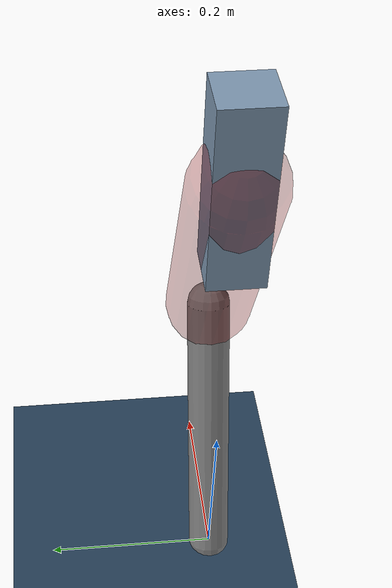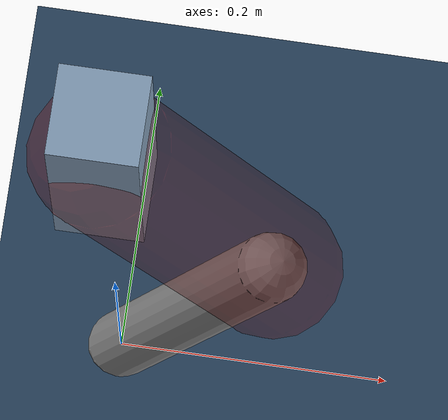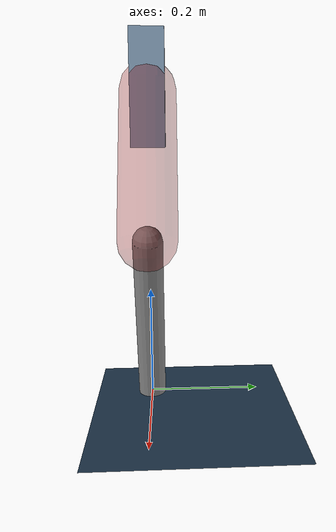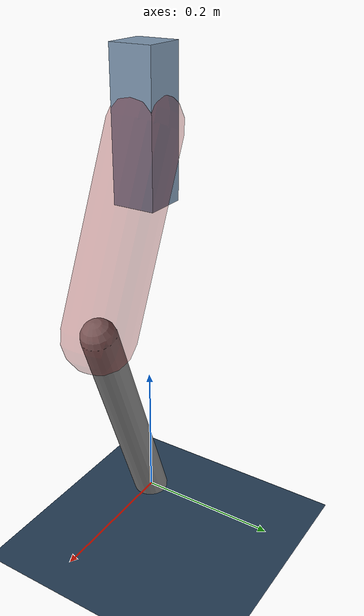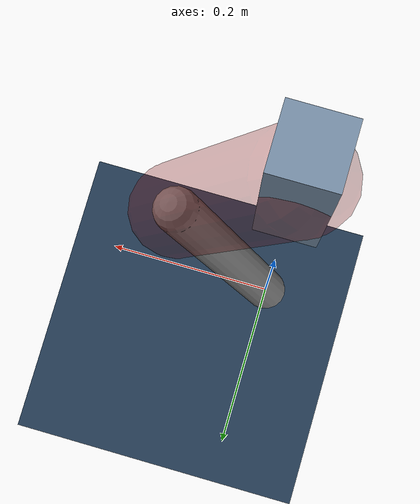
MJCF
<mujoco model="Hopper2D">
	<compiler inertiafromgeom="true" angle="radian" />
	<option timestep="0.001" integrator="implicit" cone="elliptic" solver="Newton" tolerance="1e-10" />

	<default>
		<geom contype="1" conaffinity="1" condim="3" friction="2 0.005 0.0001" solref="0.005 1" />
		<joint limited="true" damping="0.1" />
	</default>

	<asset>
		<texture name="skybox" type="skybox" builtin="gradient" rgb1=".4 .6 .8" rgb2="0 0 0" width="800" height="800" />
		<texture name="grid" type="2d" builtin="checker" rgb1=".1 .2 .3" rgb2=".2 .3 .4" width="300" height="300" mark="edge" markrgb=".2 .3 .4" />
		<material name="ground" texture="grid" texrepeat="1 1" texuniform="true" reflectance="0.1" />
		<material name="leg" rgba="0.5 0.6 0.7 1" />
	</asset>

	<worldbody>

		<geom name="floor" type="plane" size="5 5 0.25" material="ground" />

		<light directional="false" diffuse="0.8 0.8 0.8" specular="0.3 0.3 0.3" pos="0 0 2" dir="0 0 -1" />
		<light mode="targetbodycom" target="base" directional="false" diffuse="0.8 0.8 0.8" specular="0.3 0.3 0.3" pos="0 0 2" dir="0 0 -1" />

		<camera name="fixed" pos="0 -2 1" xyaxes="1 0 0 0 0 1" />
		<camera name="tracking" mode="trackcom" pos="0 -3 1" />

		<body name="root" pos="0 0 0.5629568120447977">
			<joint name="slide_x" type="slide" axis="1 0 0" range="-100 100" />
			<joint name="slide_z" type="slide" axis="0 0 1" range="0 10" />

			<body name="base" pos="0 0 0">
				<geom name="torso" type="box" size="0.03 0.03 0.1" mass="3.084" material="leg" />

				<body name="link1" pos="0 0 0" euler="0 1.146202911903964 0">
					<joint type="hinge" axis="0 -1 0" pos="0 0 0" name="hinge1" limited="true" range="-3.14 3.14" stiffness="0" damping="0.1" />
					<geom name="thigh" type="capsule" fromto="0 0 0 0.27245467939993684 0 0" size="0.05" rgba="0.5 0 0 0.3" mass="0.9151276343798295" />

					<body name="link2" pos="0.27245467939993684 0 0" euler="0 0.7671859373058639 0">
						<joint type="hinge" axis="0 -1 0" pos="0 0 0" name="hinge2" limited="true" range="-3.14 3.14" stiffness="0" damping="0.1" />
						<geom name="shank" type="capsule" fromto="0 0 0 0.3341105846911251 0 0" size="0.025" mass="0.5110884677529001" />

					</body>
				</body>
			</body>
		</body>
	</worldbody>

	<actuator>
		<motor name="torque1" joint="hinge1" ctrlrange="-96.10968756424371 96.10968756424371" ctrllimited="true" gear="1" />
		<motor name="torque2" joint="hinge2" ctrlrange="-115.13000094263288 115.13000094263288" ctrllimited="true" gear="1" />
	</actuator>
</mujoco>
